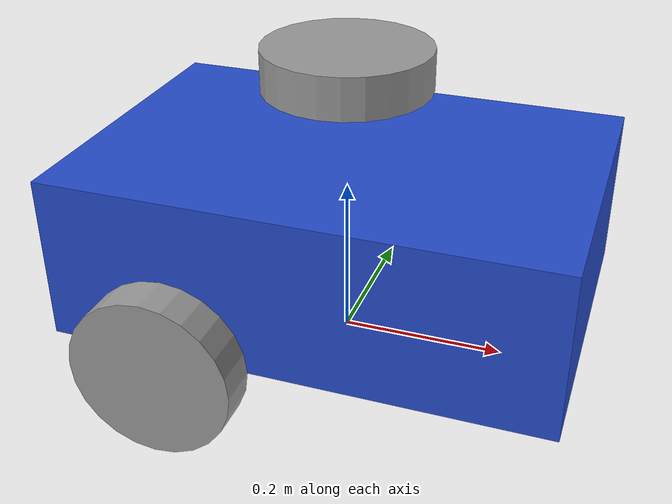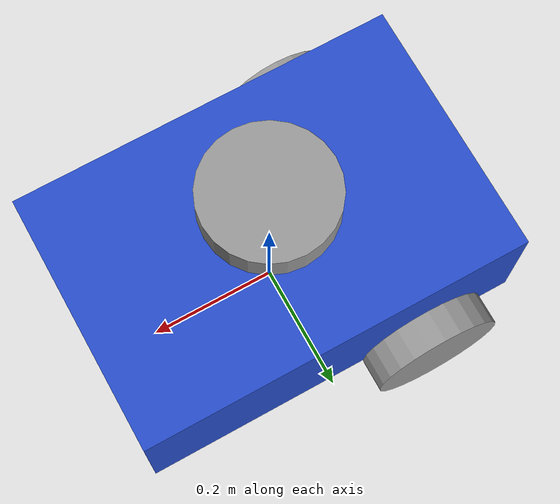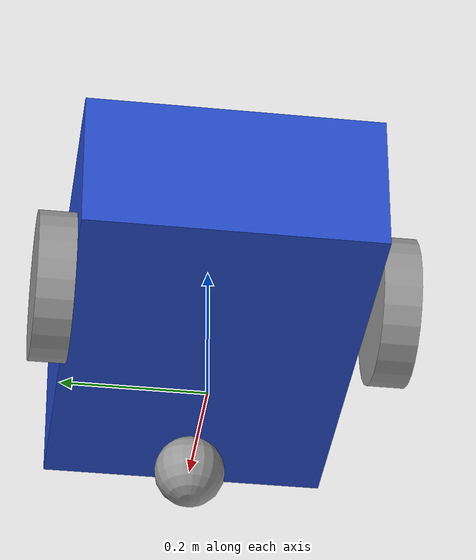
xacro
<?xml version="1.0" ?>
<robot xmlns:xacro="http://www.ros.org/wiki/xacro">

    <xacro:property name="base_length" value="0.6" />
    <xacro:property name="base_width" value="0.4" />
    <xacro:property name="base_height" value="0.2" />
    <xacro:property name="wheel_radius" value="0.1" />
    <xacro:property name="wheel_length" value = "0.05" />

    <link name="base_footprint" />

    <link name="base_link">
        <visual>
            <geometry>
                <box size="${base_length} ${base_width} ${base_height}" />
            </geometry>
            <origin xyz="0 0 ${base_height /2.0}" rpy="0 0 0" />
            <material name="blue" />
        </visual>
        <collision>
            <geometry>
                <box size="${base_length} ${base_width} ${base_height}" />
            </geometry>
            <origin xyz="0 0 ${base_height /2.0}" rpy="0 0 0" />
        </collision>
        <xacro:box_inertia m="5.0" l="${2*base_length}" w="${2*base_width}" h="${2*base_height}"
                           xyz="0 0 ${base_length /2.0}" rpy="0 0 0" />
    </link>

    <link name="base_scan">
        <visual>
            <geometry>
                <cylinder radius="${wheel_radius}" length="${wheel_length}"/>
            </geometry>
            <origin xyz="0 0 0.05" rpy="0 0 0" />
            <material name="gray" />
        </visual>
        <collision>
            <geometry>
                <cylinder radius="${wheel_radius}" length="${wheel_length}"/>
            </geometry>
            <origin xyz="0 0 0.05" rpy="0 0 0" />
        </collision>
        <xacro:wheel_inertia m="1.0" r="${2*wheel_radius / 2.0}" l="${2*wheel_length}" xyz="0 0 0" rpy="0 0 0" />
    </link>

    <xacro:macro name="wheel_link" params="prefix">
        <link name="${prefix}_wheel_link">
            <visual>
                <geometry>
                    <cylinder radius="${wheel_radius}" length="${wheel_length}" />
                </geometry>
                <origin xyz="0 0 0" rpy="${pi / 2.0} 0 0" />
                <material name="gray" />
            </visual>
            <collision>
                <geometry>
                    <cylinder radius="${wheel_radius}" length="${wheel_length}" />
                </geometry>
                <origin xyz="0 0 0" rpy="${pi / 2.0} 0 0" />
            </collision>
            <xacro:wheel_inertia m="3.0" r="${2*wheel_radius}" l="${2*wheel_length}" xyz="0 0 0" rpy="${pi / 2.0} 0 0" />
        </link>
    </xacro:macro>

    <xacro:wheel_link prefix="right" />
    <xacro:wheel_link prefix="left" />

    <link name="caster_wheel_link" >
        <visual>
            <geometry>
                <sphere radius="${wheel_radius / 2.0}" />
            </geometry>
            <origin xyz ="0 0 0" rpy="0 0 0" />
            <material name="gray" />
        </visual>
        <collision>
            <geometry>
                <sphere radius="${wheel_radius / 2.0}" />
            </geometry>
            <origin xyz ="0 0 0" rpy="0 0 0" />
        </collision>
        <xacro:caster_wheel_inertia m="1.0" r="${2*wheel_radius / 2.0}" xyz="0 0 0" rpy="0 0 0" />
    </link>

    <joint name="base_right_wheel_joint" type="continuous">
        <parent link="base_link" />
        <child link="right_wheel_link" />
        <origin xyz="${-base_length / 4.0} ${(-base_width / 2) + (-wheel_length / 2)} 0" rpy="0 0 0" />
        <axis xyz="0 1 0" />
    </joint>

    <joint name="base_left_wheel_joint" type="continuous">
        <parent link ="base_link" />
        <child link ="left_wheel_link" />
        <origin xyz ="${-base_length /4} ${(base_width / 2) + (wheel_length / 2)} 0" rpy ="0 0 0" />
        <axis xyz = "0 1 0" />
    </joint>

    <joint name="base_caster_wheel_joint" type = "fixed">
        <parent link ="base_link" />
        <child link = "caster_wheel_link" />
        <origin xyz = "${base_length / 3.0} 0 ${-wheel_radius / 2}" rpy = "0 0 0" />
    </joint>

    <joint name="base_joint" type="fixed">
        <parent link ="base_footprint" />
        <child link = "base_link" />
        <origin xyz="0 0 ${wheel_radius / 2}" rpy="0 0 0 " />
    </joint>

    <joint name="base_scan_joint" type="fixed">
        <parent link="base_link"/>
        <child link="base_scan"/>
        <origin xyz="0 0 ${base_height+0.05}" rpy="0 0 0"/>
    </joint>

</robot>
